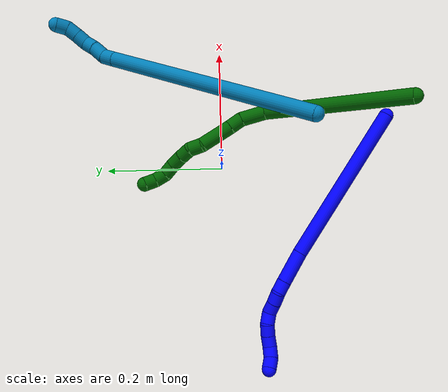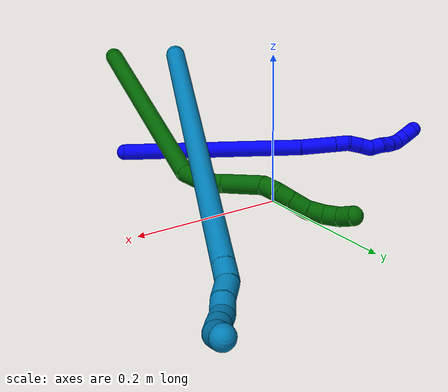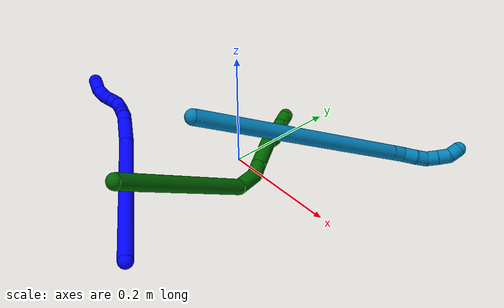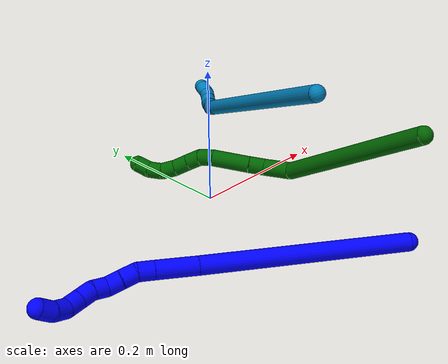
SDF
<sdf version="1.7">
 <world name="default">
  <model name="1">
   <static>0</static>
   <link name="1">
    <collision name="collision-cylinder-e_1_1_4">
     <pose>-0.119583 0.041073 -0.062704 -2.56169 -1.01088 2.15264</pose>
     <geometry><cylinder><radius>0.0125</radius><length>0.28227</length></cylinder></geometry>
     <surface>
      <friction><ode><mu>1.16</mu><mu2>1.16</mu2><slip1>0</slip1><slip2>0</slip2></ode></friction>
      <contact><ode><kp>1e+06</kp><kd>1</kd><max_vel>0</max_vel><min_depth>0.001</min_depth></ode></contact>
     </surface>
    </collision>
    <visual name="visual-cylinder-e_1_1_4">
     <pose>-0.119583 0.041073 -0.062704 -2.56169 -1.01088 2.15264</pose>
     <geometry><cylinder><radius>0.0125</radius><length>0.28227</length></cylinder></geometry>
     <material><ambient>0 0 1 1</ambient></material>
    </visual>
    <collision name="collision-cylinder-e_2_4_5">
     <pose>-0.262487 0.089173 -0.139473 -2.67827 -0.977617 2.30667</pose>
     <geometry><cylinder><radius>0.0125</radius><length>0.05625</length></cylinder></geometry>
     <surface>
      <friction><ode><mu>1.16</mu><mu2>1.16</mu2><slip1>0</slip1><slip2>0</slip2></ode></friction>
      <contact><ode><kp>1e+06</kp><kd>1</kd><max_vel>0</max_vel><min_depth>0.001</min_depth></ode></contact>
     </surface>
    </collision>
    <visual name="visual-cylinder-e_2_4_5">
     <pose>-0.262487 0.089173 -0.139473 -2.67827 -0.977617 2.30667</pose>
     <geometry><cylinder><radius>0.0125</radius><length>0.05625</length></cylinder></geometry>
     <material><ambient>0 0 1 1</ambient></material>
    </visual>
    <collision name="collision-cylinder-e_3_5_6">
     <pose>-0.294598 0.098908 -0.159022 -2.68291 -0.962858 2.30113</pose>
     <geometry><cylinder><radius>0.0125</radius><length>0.021419</length></cylinder></geometry>
     <surface>
      <friction><ode><mu>1.16</mu><mu2>1.16</mu2><slip1>0</slip1><slip2>0</slip2></ode></friction>
      <contact><ode><kp>1e+06</kp><kd>1</kd><max_vel>0</max_vel><min_depth>0.001</min_depth></ode></contact>
     </surface>
    </collision>
    <visual name="visual-cylinder-e_3_5_6">
     <pose>-0.294598 0.098908 -0.159022 -2.68291 -0.962858 2.30113</pose>
     <geometry><cylinder><radius>0.0125</radius><length>0.021419</length></cylinder></geometry>
     <material><ambient>0 0 1 1</ambient></material>
    </visual>
    <collision name="collision-cylinder-e_4_6_7">
     <pose>-0.309818 0.107254 -0.169708 -2.31594 -0.697576 1.38586</pose>
     <geometry><cylinder><radius>0.0125</radius><length>0.020015</length></cylinder></geometry>
     <surface>
      <friction><ode><mu>1.16</mu><mu2>1.16</mu2><slip1>0</slip1><slip2>0</slip2></ode></friction>
      <contact><ode><kp>1e+06</kp><kd>1</kd><max_vel>0</max_vel><min_depth>0.001</min_depth></ode></contact>
     </surface>
    </collision>
    <visual name="visual-cylinder-e_4_6_7">
     <pose>-0.309818 0.107254 -0.169708 -2.31594 -0.697576 1.38586</pose>
     <geometry><cylinder><radius>0.0125</radius><length>0.020015</length></cylinder></geometry>
     <material><ambient>0 0 1 1</ambient></material>
    </visual>
    <collision name="collision-cylinder-e_5_7_8">
     <pose>-0.322891 0.118803 -0.179507 -2.23183 -0.725667 1.32015</pose>
     <geometry><cylinder><radius>0.0125</radius><length>0.020025</length></cylinder></geometry>
     <surface>
      <friction><ode><mu>1.16</mu><mu2>1.16</mu2><slip1>0</slip1><slip2>0</slip2></ode></friction>
      <contact><ode><kp>1e+06</kp><kd>1</kd><max_vel>0</max_vel><min_depth>0.001</min_depth></ode></contact>
     </surface>
    </collision>
    <visual name="visual-cylinder-e_5_7_8">
     <pose>-0.322891 0.118803 -0.179507 -2.23183 -0.725667 1.32015</pose>
     <geometry><cylinder><radius>0.0125</radius><length>0.020025</length></cylinder></geometry>
     <material><ambient>0 0 1 1</ambient></material>
    </visual>
    <collision name="collision-cylinder-e_6_8_9">
     <pose>-0.335783 0.126687 -0.191661 -2.88643 -0.674794 2.44048</pose>
     <geometry><cylinder><radius>0.0125</radius><length>0.020002</length></cylinder></geometry>
     <surface>
      <friction><ode><mu>1.16</mu><mu2>1.16</mu2><slip1>0</slip1><slip2>0</slip2></ode></friction>
      <contact><ode><kp>1e+06</kp><kd>1</kd><max_vel>0</max_vel><min_depth>0.001</min_depth></ode></contact>
     </surface>
    </collision>
    <visual name="visual-cylinder-e_6_8_9">
     <pose>-0.335783 0.126687 -0.191661 -2.88643 -0.674794 2.44048</pose>
     <geometry><cylinder><radius>0.0125</radius><length>0.020002</length></cylinder></geometry>
     <material><ambient>0 0 1 1</ambient></material>
    </visual>
    <collision name="collision-cylinder-e_7_9_10">
     <pose>-0.345761 0.132951 -0.207443 -2.66054 -0.382238 1.33579</pose>
     <geometry><cylinder><radius>0.0125</radius><length>0.020001</length></cylinder></geometry>
     <surface>
      <friction><ode><mu>1.16</mu><mu2>1.16</mu2><slip1>0</slip1><slip2>0</slip2></ode></friction>
      <contact><ode><kp>1e+06</kp><kd>1</kd><max_vel>0</max_vel><min_depth>0.001</min_depth></ode></contact>
     </surface>
    </collision>
    <visual name="visual-cylinder-e_7_9_10">
     <pose>-0.345761 0.132951 -0.207443 -2.66054 -0.382238 1.33579</pose>
     <geometry><cylinder><radius>0.0125</radius><length>0.020001</length></cylinder></geometry>
     <material><ambient>0 0 1 1</ambient></material>
    </visual>
    <collision name="collision-cylinder-e_8_10_11">
     <pose>-0.352532 0.140555 -0.224608 -2.78687 -0.308786 1.43</pose>
     <geometry><cylinder><radius>0.0125</radius><length>0.020012</length></cylinder></geometry>
     <surface>
      <friction><ode><mu>1.16</mu><mu2>1.16</mu2><slip1>0</slip1><slip2>0</slip2></ode></friction>
      <contact><ode><kp>1e+06</kp><kd>1</kd><max_vel>0</max_vel><min_depth>0.001</min_depth></ode></contact>
     </surface>
    </collision>
    <visual name="visual-cylinder-e_8_10_11">
     <pose>-0.352532 0.140555 -0.224608 -2.78687 -0.308786 1.43</pose>
     <geometry><cylinder><radius>0.0125</radius><length>0.020012</length></cylinder></geometry>
     <material><ambient>0 0 1 1</ambient></material>
    </visual>
    <collision name="collision-cylinder-e_9_11_12">
     <pose>-0.359744 0.143836 -0.242639 3.13826 -0.430109 -3.12631</pose>
     <geometry><cylinder><radius>0.0125</radius><length>0.020006</length></cylinder></geometry>
     <surface>
      <friction><ode><mu>1.16</mu><mu2>1.16</mu2><slip1>0</slip1><slip2>0</slip2></ode></friction>
      <contact><ode><kp>1e+06</kp><kd>1</kd><max_vel>0</max_vel><min_depth>0.001</min_depth></ode></contact>
     </surface>
    </collision>
    <visual name="visual-cylinder-e_9_11_12">
     <pose>-0.359744 0.143836 -0.242639 3.13826 -0.430109 -3.12631</pose>
     <geometry><cylinder><radius>0.0125</radius><length>0.020006</length></cylinder></geometry>
     <material><ambient>0 0 1 1</ambient></material>
    </visual>
    <collision name="collision-cylinder-e_10_12_2">
     <pose>-0.370534 0.14138 -0.258823 2.81203 -0.723348 -2.31334</pose>
     <geometry><cylinder><radius>0.0125</radius><length>0.020001</length></cylinder></geometry>
     <surface>
      <friction><ode><mu>1.16</mu><mu2>1.16</mu2><slip1>0</slip1><slip2>0</slip2></ode></friction>
      <contact><ode><kp>1e+06</kp><kd>1</kd><max_vel>0</max_vel><min_depth>0.001</min_depth></ode></contact>
     </surface>
    </collision>
    <visual name="visual-cylinder-e_10_12_2">
     <pose>-0.370534 0.14138 -0.258823 2.81203 -0.723348 -2.31334</pose>
     <geometry><cylinder><radius>0.0125</radius><length>0.020001</length></cylinder></geometry>
     <material><ambient>0 0 1 1</ambient></material>
    </visual>
    <collision name="collision-sphere-2">
     <pose>-0.377153 0.138954 -0.265916 0 -0 0</pose>
     <geometry><sphere><radius>0.0125</radius></sphere></geometry>
     <surface>
      <friction><ode><mu>1.16</mu><mu2>1.16</mu2><slip1>0</slip1><slip2>0</slip2></ode></friction>
      <contact><ode><kp>1e+06</kp><kd>1</kd><max_vel>0</max_vel><min_depth>0.001</min_depth></ode></contact>
     </surface>
    </collision>
    <visual name="visual-sphere-2">
     <pose>-0.377153 0.138954 -0.265916 0 -0 0</pose>
     <geometry><sphere><radius>0.0125</radius></sphere></geometry>
     <material><ambient>0 0 1 1</ambient></material>
    </visual>
    <collision name="collision-sphere-12">
     <pose>-0.363915 0.143806 -0.251731 0 -0 0</pose>
     <geometry><sphere><radius>0.0125</radius></sphere></geometry>
     <surface>
      <friction><ode><mu>1.16</mu><mu2>1.16</mu2><slip1>0</slip1><slip2>0</slip2></ode></friction>
      <contact><ode><kp>1e+06</kp><kd>1</kd><max_vel>0</max_vel><min_depth>0.001</min_depth></ode></contact>
     </surface>
    </collision>
    <visual name="visual-sphere-12">
     <pose>-0.363915 0.143806 -0.251731 0 -0 0</pose>
     <geometry><sphere><radius>0.0125</radius></sphere></geometry>
     <material><ambient>0 0 1 1</ambient></material>
    </visual>
    <collision name="collision-sphere-11">
     <pose>-0.355573 0.143866 -0.233547 0 -0 0</pose>
     <geometry><sphere><radius>0.0125</radius></sphere></geometry>
     <surface>
      <friction><ode><mu>1.16</mu><mu2>1.16</mu2><slip1>0</slip1><slip2>0</slip2></ode></friction>
      <contact><ode><kp>1e+06</kp><kd>1</kd><max_vel>0</max_vel><min_depth>0.001</min_depth></ode></contact>
     </surface>
    </collision>
    <visual name="visual-sphere-11">
     <pose>-0.355573 0.143866 -0.233547 0 -0 0</pose>
     <geometry><sphere><radius>0.0125</radius></sphere></geometry>
     <material><ambient>0 0 1 1</ambient></material>
    </visual>
    <collision name="collision-sphere-10">
     <pose>-0.349492 0.137244 -0.215669 0 -0 0</pose>
     <geometry><sphere><radius>0.0125</radius></sphere></geometry>
     <surface>
      <friction><ode><mu>1.16</mu><mu2>1.16</mu2><slip1>0</slip1><slip2>0</slip2></ode></friction>
      <contact><ode><kp>1e+06</kp><kd>1</kd><max_vel>0</max_vel><min_depth>0.001</min_depth></ode></contact>
     </surface>
    </collision>
    <visual name="visual-sphere-10">
     <pose>-0.349492 0.137244 -0.215669 0 -0 0</pose>
     <geometry><sphere><radius>0.0125</radius></sphere></geometry>
     <material><ambient>0 0 1 1</ambient></material>
    </visual>
    <collision name="collision-sphere-9">
     <pose>-0.342031 0.128658 -0.199217 0 -0 0</pose>
     <geometry><sphere><radius>0.0125</radius></sphere></geometry>
     <surface>
      <friction><ode><mu>1.16</mu><mu2>1.16</mu2><slip1>0</slip1><slip2>0</slip2></ode></friction>
      <contact><ode><kp>1e+06</kp><kd>1</kd><max_vel>0</max_vel><min_depth>0.001</min_depth></ode></contact>
     </surface>
    </collision>
    <visual name="visual-sphere-9">
     <pose>-0.342031 0.128658 -0.199217 0 -0 0</pose>
     <geometry><sphere><radius>0.0125</radius></sphere></geometry>
     <material><ambient>0 0 1 1</ambient></material>
    </visual>
    <collision name="collision-sphere-4">
     <pose>-0.239167 0.082147 -0.125409 0 -0 0</pose>
     <geometry><sphere><radius>0.0125</radius></sphere></geometry>
     <surface>
      <friction><ode><mu>1.16</mu><mu2>1.16</mu2><slip1>0</slip1><slip2>0</slip2></ode></friction>
      <contact><ode><kp>1e+06</kp><kd>1</kd><max_vel>0</max_vel><min_depth>0.001</min_depth></ode></contact>
     </surface>
    </collision>
    <visual name="visual-sphere-4">
     <pose>-0.239167 0.082147 -0.125409 0 -0 0</pose>
     <geometry><sphere><radius>0.0125</radius></sphere></geometry>
     <material><ambient>0 0 1 1</ambient></material>
    </visual>
    <collision name="collision-sphere-1">
     <geometry><sphere><radius>0.0125</radius></sphere></geometry>
     <surface>
      <friction><ode><mu>1.16</mu><mu2>1.16</mu2><slip1>0</slip1><slip2>0</slip2></ode></friction>
      <contact><ode><kp>1e+06</kp><kd>1</kd><max_vel>0</max_vel><min_depth>0.001</min_depth></ode></contact>
     </surface>
    </collision>
    <visual name="visual-sphere-1">
     <geometry><sphere><radius>0.0125</radius></sphere></geometry>
     <material><ambient>0 0 1 1</ambient></material>
    </visual>
    <collision name="collision-sphere-8">
     <pose>-0.329536 0.124716 -0.184105 0 -0 0</pose>
     <geometry><sphere><radius>0.0125</radius></sphere></geometry>
     <surface>
      <friction><ode><mu>1.16</mu><mu2>1.16</mu2><slip1>0</slip1><slip2>0</slip2></ode></friction>
      <contact><ode><kp>1e+06</kp><kd>1</kd><max_vel>0</max_vel><min_depth>0.001</min_depth></ode></contact>
     </surface>
    </collision>
    <visual name="visual-sphere-8">
     <pose>-0.329536 0.124716 -0.184105 0 -0 0</pose>
     <geometry><sphere><radius>0.0125</radius></sphere></geometry>
     <material><ambient>0 0 1 1</ambient></material>
    </visual>
    <collision name="collision-sphere-5">
     <pose>-0.285807 0.0962 -0.153537 0 -0 0</pose>
     <geometry><sphere><radius>0.0125</radius></sphere></geometry>
     <surface>
      <friction><ode><mu>1.16</mu><mu2>1.16</mu2><slip1>0</slip1><slip2>0</slip2></ode></friction>
      <contact><ode><kp>1e+06</kp><kd>1</kd><max_vel>0</max_vel><min_depth>0.001</min_depth></ode></contact>
     </surface>
    </collision>
    <visual name="visual-sphere-5">
     <pose>-0.285807 0.0962 -0.153537 0 -0 0</pose>
     <geometry><sphere><radius>0.0125</radius></sphere></geometry>
     <material><ambient>0 0 1 1</ambient></material>
    </visual>
    <collision name="collision-sphere-6">
     <pose>-0.303389 0.101617 -0.164507 0 -0 0</pose>
     <geometry><sphere><radius>0.0125</radius></sphere></geometry>
     <surface>
      <friction><ode><mu>1.16</mu><mu2>1.16</mu2><slip1>0</slip1><slip2>0</slip2></ode></friction>
      <contact><ode><kp>1e+06</kp><kd>1</kd><max_vel>0</max_vel><min_depth>0.001</min_depth></ode></contact>
     </surface>
    </collision>
    <visual name="visual-sphere-6">
     <pose>-0.303389 0.101617 -0.164507 0 -0 0</pose>
     <geometry><sphere><radius>0.0125</radius></sphere></geometry>
     <material><ambient>0 0 1 1</ambient></material>
    </visual>
    <collision name="collision-sphere-7">
     <pose>-0.316246 0.112891 -0.174908 0 -0 0</pose>
     <geometry><sphere><radius>0.0125</radius></sphere></geometry>
     <surface>
      <friction><ode><mu>1.16</mu><mu2>1.16</mu2><slip1>0</slip1><slip2>0</slip2></ode></friction>
      <contact><ode><kp>1e+06</kp><kd>1</kd><max_vel>0</max_vel><min_depth>0.001</min_depth></ode></contact>
     </surface>
    </collision>
    <visual name="visual-sphere-7">
     <pose>-0.316246 0.112891 -0.174908 0 -0 0</pose>
     <geometry><sphere><radius>0.0125</radius></sphere></geometry>
     <material><ambient>0 0 1 1</ambient></material>
    </visual>
    <inertial>
     <pose>-0.205582 0.07393 -0.116901 0 -0 0</pose>
     <mass>0.5</mass>
     <inertia>
      <ixx>0.00026</ixx>
      <ixy>0</ixy>
      <ixz>0</ixz>
      <iyy>0.002479</iyy>
      <iyz>0</iyz>
      <izz>0.001041</izz>
     </inertia>
    </inertial>
   </link>
   <pose>0.08577 -0.287506 0.012483 -1.83441 0.213292 -1.11608</pose>
  </model>
  <model name="6">
   <static>0</static>
   <link name="6">
    <collision name="collision-cylinder-e_1_1_4">
     <pose>-0.028312 -0.008998 -0.120222 3.06688 -0.230661 -2.51747</pose>
     <geometry><cylinder><radius>0.0125</radius><length>0.247676</length></cylinder></geometry>
     <surface>
      <friction><ode><mu>1.16</mu><mu2>1.16</mu2><slip1>0</slip1><slip2>0</slip2></ode></friction>
      <contact><ode><kp>1e+06</kp><kd>1</kd><max_vel>0</max_vel><min_depth>0.001</min_depth></ode></contact>
     </surface>
    </collision>
    <visual name="visual-cylinder-e_1_1_4">
     <pose>-0.028312 -0.008998 -0.120222 3.06688 -0.230661 -2.51747</pose>
     <geometry><cylinder><radius>0.0125</radius><length>0.247676</length></cylinder></geometry>
     <material><ambient>0 0.392157 0.003922 1</ambient></material>
    </visual>
    <collision name="collision-cylinder-e_2_4_5">
     <pose>-0.06249 -0.009435 -0.259329 -2.71595 -0.275693 1.14143</pose>
     <geometry><cylinder><radius>0.0125</radius><length>0.043098</length></cylinder></geometry>
     <surface>
      <friction><ode><mu>1.16</mu><mu2>1.16</mu2><slip1>0</slip1><slip2>0</slip2></ode></friction>
      <contact><ode><kp>1e+06</kp><kd>1</kd><max_vel>0</max_vel><min_depth>0.001</min_depth></ode></contact>
     </surface>
    </collision>
    <visual name="visual-cylinder-e_2_4_5">
     <pose>-0.06249 -0.009435 -0.259329 -2.71595 -0.275693 1.14143</pose>
     <geometry><cylinder><radius>0.0125</radius><length>0.043098</length></cylinder></geometry>
     <material><ambient>0 0.392157 0.003922 1</ambient></material>
    </visual>
    <collision name="collision-cylinder-e_3_5_6">
     <pose>-0.073965 0.007013 -0.285647 -2.32654 -0.477595 1.02694</pose>
     <geometry><cylinder><radius>0.0125</radius><length>0.024406</length></cylinder></geometry>
     <surface>
      <friction><ode><mu>1.16</mu><mu2>1.16</mu2><slip1>0</slip1><slip2>0</slip2></ode></friction>
      <contact><ode><kp>1e+06</kp><kd>1</kd><max_vel>0</max_vel><min_depth>0.001</min_depth></ode></contact>
     </surface>
    </collision>
    <visual name="visual-cylinder-e_3_5_6">
     <pose>-0.073965 0.007013 -0.285647 -2.32654 -0.477595 1.02694</pose>
     <geometry><cylinder><radius>0.0125</radius><length>0.024406</length></cylinder></geometry>
     <material><ambient>0 0.392157 0.003922 1</ambient></material>
    </visual>
    <collision name="collision-cylinder-e_4_6_7">
     <pose>-0.091571 0.032796 -0.311034 -2.35783 -0.442027 0.995972</pose>
     <geometry><cylinder><radius>0.0125</radius><length>0.056091</length></cylinder></geometry>
     <surface>
      <friction><ode><mu>1.16</mu><mu2>1.16</mu2><slip1>0</slip1><slip2>0</slip2></ode></friction>
      <contact><ode><kp>1e+06</kp><kd>1</kd><max_vel>0</max_vel><min_depth>0.001</min_depth></ode></contact>
     </surface>
    </collision>
    <visual name="visual-cylinder-e_4_6_7">
     <pose>-0.091571 0.032796 -0.311034 -2.35783 -0.442027 0.995972</pose>
     <geometry><cylinder><radius>0.0125</radius><length>0.056091</length></cylinder></geometry>
     <material><ambient>0 0.392157 0.003922 1</ambient></material>
    </visual>
    <collision name="collision-cylinder-e_5_7_8">
     <pose>-0.107335 0.054575 -0.338636 -2.75902 -0.347546 1.47275</pose>
     <geometry><cylinder><radius>0.0125</radius><length>0.022122</length></cylinder></geometry>
     <surface>
      <friction><ode><mu>1.16</mu><mu2>1.16</mu2><slip1>0</slip1><slip2>0</slip2></ode></friction>
      <contact><ode><kp>1e+06</kp><kd>1</kd><max_vel>0</max_vel><min_depth>0.001</min_depth></ode></contact>
     </surface>
    </collision>
    <visual name="visual-cylinder-e_5_7_8">
     <pose>-0.107335 0.054575 -0.338636 -2.75902 -0.347546 1.47275</pose>
     <geometry><cylinder><radius>0.0125</radius><length>0.022122</length></cylinder></geometry>
     <material><ambient>0 0.392157 0.003922 1</ambient></material>
    </visual>
    <collision name="collision-cylinder-e_6_8_9">
     <pose>-0.118225 0.059878 -0.355666 -2.95139 -0.758354 2.67164</pose>
     <geometry><cylinder><radius>0.0125</radius><length>0.020712</length></cylinder></geometry>
     <surface>
      <friction><ode><mu>1.16</mu><mu2>1.16</mu2><slip1>0</slip1><slip2>0</slip2></ode></friction>
      <contact><ode><kp>1e+06</kp><kd>1</kd><max_vel>0</max_vel><min_depth>0.001</min_depth></ode></contact>
     </surface>
    </collision>
    <visual name="visual-cylinder-e_6_8_9">
     <pose>-0.118225 0.059878 -0.355666 -2.95139 -0.758354 2.67164</pose>
     <geometry><cylinder><radius>0.0125</radius><length>0.020712</length></cylinder></geometry>
     <material><ambient>0 0.392157 0.003922 1</ambient></material>
    </visual>
    <collision name="collision-cylinder-e_7_9_10">
     <pose>-0.133693 0.062857 -0.37107 -2.94976 -0.796005 2.69168</pose>
     <geometry><cylinder><radius>0.0125</radius><length>0.023359</length></cylinder></geometry>
     <surface>
      <friction><ode><mu>1.16</mu><mu2>1.16</mu2><slip1>0</slip1><slip2>0</slip2></ode></friction>
      <contact><ode><kp>1e+06</kp><kd>1</kd><max_vel>0</max_vel><min_depth>0.001</min_depth></ode></contact>
     </surface>
    </collision>
    <visual name="visual-cylinder-e_7_9_10">
     <pose>-0.133693 0.062857 -0.37107 -2.94976 -0.796005 2.69168</pose>
     <geometry><cylinder><radius>0.0125</radius><length>0.023359</length></cylinder></geometry>
     <material><ambient>0 0.392157 0.003922 1</ambient></material>
    </visual>
    <collision name="collision-cylinder-e_8_10_11">
     <pose>-0.150085 0.068246 -0.384957 -2.56316 -0.854403 1.98374</pose>
     <geometry><cylinder><radius>0.0125</radius><length>0.021338</length></cylinder></geometry>
     <surface>
      <friction><ode><mu>1.16</mu><mu2>1.16</mu2><slip1>0</slip1><slip2>0</slip2></ode></friction>
      <contact><ode><kp>1e+06</kp><kd>1</kd><max_vel>0</max_vel><min_depth>0.001</min_depth></ode></contact>
     </surface>
    </collision>
    <visual name="visual-cylinder-e_8_10_11">
     <pose>-0.150085 0.068246 -0.384957 -2.56316 -0.854403 1.98374</pose>
     <geometry><cylinder><radius>0.0125</radius><length>0.021338</length></cylinder></geometry>
     <material><ambient>0 0.392157 0.003922 1</ambient></material>
    </visual>
    <collision name="collision-cylinder-e_9_11_12">
     <pose>-0.162676 0.077988 -0.398004 -2.45278 -0.454479 1.1452</pose>
     <geometry><cylinder><radius>0.0125</radius><length>0.020705</length></cylinder></geometry>
     <surface>
      <friction><ode><mu>1.16</mu><mu2>1.16</mu2><slip1>0</slip1><slip2>0</slip2></ode></friction>
      <contact><ode><kp>1e+06</kp><kd>1</kd><max_vel>0</max_vel><min_depth>0.001</min_depth></ode></contact>
     </surface>
    </collision>
    <visual name="visual-cylinder-e_9_11_12">
     <pose>-0.162676 0.077988 -0.398004 -2.45278 -0.454479 1.1452</pose>
     <geometry><cylinder><radius>0.0125</radius><length>0.020705</length></cylinder></geometry>
     <material><ambient>0 0.392157 0.003922 1</ambient></material>
    </visual>
    <collision name="collision-cylinder-e_10_12_2">
     <pose>-0.168892 0.091437 -0.411922 -2.30025 -0.163892 0.363119</pose>
     <geometry><cylinder><radius>0.0125</radius><length>0.020493</length></cylinder></geometry>
     <surface>
      <friction><ode><mu>1.16</mu><mu2>1.16</mu2><slip1>0</slip1><slip2>0</slip2></ode></friction>
      <contact><ode><kp>1e+06</kp><kd>1</kd><max_vel>0</max_vel><min_depth>0.001</min_depth></ode></contact>
     </surface>
    </collision>
    <visual name="visual-cylinder-e_10_12_2">
     <pose>-0.168892 0.091437 -0.411922 -2.30025 -0.163892 0.363119</pose>
     <geometry><cylinder><radius>0.0125</radius><length>0.020493</length></cylinder></geometry>
     <material><ambient>0 0.392157 0.003922 1</ambient></material>
    </visual>
    <collision name="collision-sphere-2">
     <pose>-0.170564 0.098974 -0.41866 0 -0 0</pose>
     <geometry><sphere><radius>0.0125</radius></sphere></geometry>
     <surface>
      <friction><ode><mu>1.16</mu><mu2>1.16</mu2><slip1>0</slip1><slip2>0</slip2></ode></friction>
      <contact><ode><kp>1e+06</kp><kd>1</kd><max_vel>0</max_vel><min_depth>0.001</min_depth></ode></contact>
     </surface>
    </collision>
    <visual name="visual-sphere-2">
     <pose>-0.170564 0.098974 -0.41866 0 -0 0</pose>
     <geometry><sphere><radius>0.0125</radius></sphere></geometry>
     <material><ambient>0 0.392157 0.003922 1</ambient></material>
    </visual>
    <collision name="collision-sphere-12">
     <pose>-0.167221 0.0839 -0.405185 0 -0 0</pose>
     <geometry><sphere><radius>0.0125</radius></sphere></geometry>
     <surface>
      <friction><ode><mu>1.16</mu><mu2>1.16</mu2><slip1>0</slip1><slip2>0</slip2></ode></friction>
      <contact><ode><kp>1e+06</kp><kd>1</kd><max_vel>0</max_vel><min_depth>0.001</min_depth></ode></contact>
     </surface>
    </collision>
    <visual name="visual-sphere-12">
     <pose>-0.167221 0.0839 -0.405185 0 -0 0</pose>
     <geometry><sphere><radius>0.0125</radius></sphere></geometry>
     <material><ambient>0 0.392157 0.003922 1</ambient></material>
    </visual>
    <collision name="collision-sphere-11">
     <pose>-0.158131 0.072076 -0.390823 0 -0 0</pose>
     <geometry><sphere><radius>0.0125</radius></sphere></geometry>
     <surface>
      <friction><ode><mu>1.16</mu><mu2>1.16</mu2><slip1>0</slip1><slip2>0</slip2></ode></friction>
      <contact><ode><kp>1e+06</kp><kd>1</kd><max_vel>0</max_vel><min_depth>0.001</min_depth></ode></contact>
     </surface>
    </collision>
    <visual name="visual-sphere-11">
     <pose>-0.158131 0.072076 -0.390823 0 -0 0</pose>
     <geometry><sphere><radius>0.0125</radius></sphere></geometry>
     <material><ambient>0 0.392157 0.003922 1</ambient></material>
    </visual>
    <collision name="collision-sphere-10">
     <pose>-0.142039 0.064415 -0.379091 0 -0 0</pose>
     <geometry><sphere><radius>0.0125</radius></sphere></geometry>
     <surface>
      <friction><ode><mu>1.16</mu><mu2>1.16</mu2><slip1>0</slip1><slip2>0</slip2></ode></friction>
      <contact><ode><kp>1e+06</kp><kd>1</kd><max_vel>0</max_vel><min_depth>0.001</min_depth></ode></contact>
     </surface>
    </collision>
    <visual name="visual-sphere-10">
     <pose>-0.142039 0.064415 -0.379091 0 -0 0</pose>
     <geometry><sphere><radius>0.0125</radius></sphere></geometry>
     <material><ambient>0 0.392157 0.003922 1</ambient></material>
    </visual>
    <collision name="collision-sphere-9">
     <pose>-0.125347 0.0613 -0.363049 0 -0 0</pose>
     <geometry><sphere><radius>0.0125</radius></sphere></geometry>
     <surface>
      <friction><ode><mu>1.16</mu><mu2>1.16</mu2><slip1>0</slip1><slip2>0</slip2></ode></friction>
      <contact><ode><kp>1e+06</kp><kd>1</kd><max_vel>0</max_vel><min_depth>0.001</min_depth></ode></contact>
     </surface>
    </collision>
    <visual name="visual-sphere-9">
     <pose>-0.125347 0.0613 -0.363049 0 -0 0</pose>
     <geometry><sphere><radius>0.0125</radius></sphere></geometry>
     <material><ambient>0 0.392157 0.003922 1</ambient></material>
    </visual>
    <collision name="collision-sphere-4">
     <pose>-0.056624 -0.017997 -0.240444 0 -0 0</pose>
     <geometry><sphere><radius>0.0125</radius></sphere></geometry>
     <surface>
      <friction><ode><mu>1.16</mu><mu2>1.16</mu2><slip1>0</slip1><slip2>0</slip2></ode></friction>
      <contact><ode><kp>1e+06</kp><kd>1</kd><max_vel>0</max_vel><min_depth>0.001</min_depth></ode></contact>
     </surface>
    </collision>
    <visual name="visual-sphere-4">
     <pose>-0.056624 -0.017997 -0.240444 0 -0 0</pose>
     <geometry><sphere><radius>0.0125</radius></sphere></geometry>
     <material><ambient>0 0.392157 0.003922 1</ambient></material>
    </visual>
    <collision name="collision-sphere-1">
     <geometry><sphere><radius>0.0125</radius></sphere></geometry>
     <surface>
      <friction><ode><mu>1.16</mu><mu2>1.16</mu2><slip1>0</slip1><slip2>0</slip2></ode></friction>
      <contact><ode><kp>1e+06</kp><kd>1</kd><max_vel>0</max_vel><min_depth>0.001</min_depth></ode></contact>
     </surface>
    </collision>
    <visual name="visual-sphere-1">
     <geometry><sphere><radius>0.0125</radius></sphere></geometry>
     <material><ambient>0 0.392157 0.003922 1</ambient></material>
    </visual>
    <collision name="collision-sphere-8">
     <pose>-0.111103 0.058457 -0.348284 0 -0 0</pose>
     <geometry><sphere><radius>0.0125</radius></sphere></geometry>
     <surface>
      <friction><ode><mu>1.16</mu><mu2>1.16</mu2><slip1>0</slip1><slip2>0</slip2></ode></friction>
      <contact><ode><kp>1e+06</kp><kd>1</kd><max_vel>0</max_vel><min_depth>0.001</min_depth></ode></contact>
     </surface>
    </collision>
    <visual name="visual-sphere-8">
     <pose>-0.111103 0.058457 -0.348284 0 -0 0</pose>
     <geometry><sphere><radius>0.0125</radius></sphere></geometry>
     <material><ambient>0 0.392157 0.003922 1</ambient></material>
    </visual>
    <collision name="collision-sphere-5">
     <pose>-0.068356 -0.000874 -0.278214 0 -0 0</pose>
     <geometry><sphere><radius>0.0125</radius></sphere></geometry>
     <surface>
      <friction><ode><mu>1.16</mu><mu2>1.16</mu2><slip1>0</slip1><slip2>0</slip2></ode></friction>
      <contact><ode><kp>1e+06</kp><kd>1</kd><max_vel>0</max_vel><min_depth>0.001</min_depth></ode></contact>
     </surface>
    </collision>
    <visual name="visual-sphere-5">
     <pose>-0.068356 -0.000874 -0.278214 0 -0 0</pose>
     <geometry><sphere><radius>0.0125</radius></sphere></geometry>
     <material><ambient>0 0.392157 0.003922 1</ambient></material>
    </visual>
    <collision name="collision-sphere-6">
     <pose>-0.079574 0.014901 -0.293079 0 -0 0</pose>
     <geometry><sphere><radius>0.0125</radius></sphere></geometry>
     <surface>
      <friction><ode><mu>1.16</mu><mu2>1.16</mu2><slip1>0</slip1><slip2>0</slip2></ode></friction>
      <contact><ode><kp>1e+06</kp><kd>1</kd><max_vel>0</max_vel><min_depth>0.001</min_depth></ode></contact>
     </surface>
    </collision>
    <visual name="visual-sphere-6">
     <pose>-0.079574 0.014901 -0.293079 0 -0 0</pose>
     <geometry><sphere><radius>0.0125</radius></sphere></geometry>
     <material><ambient>0 0.392157 0.003922 1</ambient></material>
    </visual>
    <collision name="collision-sphere-7">
     <pose>-0.103568 0.050692 -0.328988 0 -0 0</pose>
     <geometry><sphere><radius>0.0125</radius></sphere></geometry>
     <surface>
      <friction><ode><mu>1.16</mu><mu2>1.16</mu2><slip1>0</slip1><slip2>0</slip2></ode></friction>
      <contact><ode><kp>1e+06</kp><kd>1</kd><max_vel>0</max_vel><min_depth>0.001</min_depth></ode></contact>
     </surface>
    </collision>
    <visual name="visual-sphere-7">
     <pose>-0.103568 0.050692 -0.328988 0 -0 0</pose>
     <geometry><sphere><radius>0.0125</radius></sphere></geometry>
     <material><ambient>0 0.392157 0.003922 1</ambient></material>
    </visual>
    <inertial>
     <pose>-0.06925 0.016472 -0.227585 0 -0 0</pose>
     <mass>0.5</mass>
     <inertia>
      <ixx>-0.001708</ixx>
      <ixy>0</ixy>
      <ixz>0</ixz>
      <iyy>0.000353</iyy>
      <iyz>0</iyz>
      <izz>0.000348</izz>
     </inertia>
    </inertial>
   </link>
   <pose>0.092395 -0.288262 0.166585 1.14884 -0.456214 -0.001176</pose>
  </model>
  <model name="9">
   <static>0</static>
   <link name="9">
    <collision name="collision-cylinder-e_1_1_4">
     <pose>0.028538 0.181855 -0.029294 -1.73051 0.153708 -0.180315</pose>
     <geometry><cylinder><radius>0.0125</radius><length>0.372793</length></cylinder></geometry>
     <surface>
      <friction><ode><mu>1.16</mu><mu2>1.16</mu2><slip1>0</slip1><slip2>0</slip2></ode></friction>
      <contact><ode><kp>1e+06</kp><kd>1</kd><max_vel>0</max_vel><min_depth>0.001</min_depth></ode></contact>
     </surface>
    </collision>
    <visual name="visual-cylinder-e_1_1_4">
     <pose>0.028538 0.181855 -0.029294 -1.73051 0.153708 -0.180315</pose>
     <geometry><cylinder><radius>0.0125</radius><length>0.372793</length></cylinder></geometry>
     <material><ambient>0 0.490196 0.709804 1</ambient></material>
    </visual>
    <collision name="collision-cylinder-e_2_4_5">
     <pose>0.058784 0.374791 -0.060377 -1.7309 0.15097 -0.177177</pose>
     <geometry><cylinder><radius>0.0125</radius><length>0.022709</length></cylinder></geometry>
     <surface>
      <friction><ode><mu>1.16</mu><mu2>1.16</mu2><slip1>0</slip1><slip2>0</slip2></ode></friction>
      <contact><ode><kp>1e+06</kp><kd>1</kd><max_vel>0</max_vel><min_depth>0.001</min_depth></ode></contact>
     </surface>
    </collision>
    <visual name="visual-cylinder-e_2_4_5">
     <pose>0.058784 0.374791 -0.060377 -1.7309 0.15097 -0.177177</pose>
     <geometry><cylinder><radius>0.0125</radius><length>0.022709</length></cylinder></geometry>
     <material><ambient>0 0.490196 0.709804 1</ambient></material>
    </visual>
    <collision name="collision-cylinder-e_3_5_6">
     <pose>0.057582 0.397357 -0.0651 -1.82091 -0.24071 0.308956</pose>
     <geometry><cylinder><radius>0.0125</radius><length>0.02441</length></cylinder></geometry>
     <surface>
      <friction><ode><mu>1.16</mu><mu2>1.16</mu2><slip1>0</slip1><slip2>0</slip2></ode></friction>
      <contact><ode><kp>1e+06</kp><kd>1</kd><max_vel>0</max_vel><min_depth>0.001</min_depth></ode></contact>
     </surface>
    </collision>
    <visual name="visual-cylinder-e_3_5_6">
     <pose>0.057582 0.397357 -0.0651 -1.82091 -0.24071 0.308956</pose>
     <geometry><cylinder><radius>0.0125</radius><length>0.02441</length></cylinder></geometry>
     <material><ambient>0 0.490196 0.709804 1</ambient></material>
    </visual>
    <collision name="collision-cylinder-e_4_6_7">
     <pose>0.053907 0.418567 -0.070396 -1.80907 -0.076332 0.097062</pose>
     <geometry><cylinder><radius>0.0125</radius><length>0.020077</length></cylinder></geometry>
     <surface>
      <friction><ode><mu>1.16</mu><mu2>1.16</mu2><slip1>0</slip1><slip2>0</slip2></ode></friction>
      <contact><ode><kp>1e+06</kp><kd>1</kd><max_vel>0</max_vel><min_depth>0.001</min_depth></ode></contact>
     </surface>
    </collision>
    <visual name="visual-cylinder-e_4_6_7">
     <pose>0.053907 0.418567 -0.070396 -1.80907 -0.076332 0.097062</pose>
     <geometry><cylinder><radius>0.0125</radius><length>0.020077</length></cylinder></geometry>
     <material><ambient>0 0.490196 0.709804 1</ambient></material>
    </visual>
    <collision name="collision-cylinder-e_5_7_8">
     <pose>0.050152 0.435922 -0.078493 -2.21539 -0.303499 0.594394</pose>
     <geometry><cylinder><radius>0.0125</radius><length>0.020001</length></cylinder></geometry>
     <surface>
      <friction><ode><mu>1.16</mu><mu2>1.16</mu2><slip1>0</slip1><slip2>0</slip2></ode></friction>
      <contact><ode><kp>1e+06</kp><kd>1</kd><max_vel>0</max_vel><min_depth>0.001</min_depth></ode></contact>
     </surface>
    </collision>
    <visual name="visual-cylinder-e_5_7_8">
     <pose>0.050152 0.435922 -0.078493 -2.21539 -0.303499 0.594394</pose>
     <geometry><cylinder><radius>0.0125</radius><length>0.020001</length></cylinder></geometry>
     <material><ambient>0 0.490196 0.709804 1</ambient></material>
    </visual>
    <collision name="collision-cylinder-e_6_8_9">
     <pose>0.044599 0.451159 -0.090189 -2.23544 -0.259366 0.523457</pose>
     <geometry><cylinder><radius>0.0125</radius><length>0.020002</length></cylinder></geometry>
     <surface>
      <friction><ode><mu>1.16</mu><mu2>1.16</mu2><slip1>0</slip1><slip2>0</slip2></ode></friction>
      <contact><ode><kp>1e+06</kp><kd>1</kd><max_vel>0</max_vel><min_depth>0.001</min_depth></ode></contact>
     </surface>
    </collision>
    <visual name="visual-cylinder-e_6_8_9">
     <pose>0.044599 0.451159 -0.090189 -2.23544 -0.259366 0.523457</pose>
     <geometry><cylinder><radius>0.0125</radius><length>0.020002</length></cylinder></geometry>
     <material><ambient>0 0.490196 0.709804 1</ambient></material>
    </visual>
    <collision name="collision-cylinder-e_7_9_2">
     <pose>0.043133 0.464396 -0.104349 -2.53996 0.110028 -0.351366</pose>
     <geometry><cylinder><radius>0.0125</radius><length>0.020009</length></cylinder></geometry>
     <surface>
      <friction><ode><mu>1.16</mu><mu2>1.16</mu2><slip1>0</slip1><slip2>0</slip2></ode></friction>
      <contact><ode><kp>1e+06</kp><kd>1</kd><max_vel>0</max_vel><min_depth>0.001</min_depth></ode></contact>
     </surface>
    </collision>
    <visual name="visual-cylinder-e_7_9_2">
     <pose>0.043133 0.464396 -0.104349 -2.53996 0.110028 -0.351366</pose>
     <geometry><cylinder><radius>0.0125</radius><length>0.020009</length></cylinder></geometry>
     <material><ambient>0 0.490196 0.709804 1</ambient></material>
    </visual>
    <collision name="collision-sphere-2">
     <pose>0.044231 0.470025 -0.112547 0 -0 0</pose>
     <geometry><sphere><radius>0.0125</radius></sphere></geometry>
     <surface>
      <friction><ode><mu>1.16</mu><mu2>1.16</mu2><slip1>0</slip1><slip2>0</slip2></ode></friction>
      <contact><ode><kp>1e+06</kp><kd>1</kd><max_vel>0</max_vel><min_depth>0.001</min_depth></ode></contact>
     </surface>
    </collision>
    <visual name="visual-sphere-2">
     <pose>0.044231 0.470025 -0.112547 0 -0 0</pose>
     <geometry><sphere><radius>0.0125</radius></sphere></geometry>
     <material><ambient>0 0.490196 0.709804 1</ambient></material>
    </visual>
    <collision name="collision-sphere-9">
     <pose>0.042034 0.458768 -0.096151 0 -0 0</pose>
     <geometry><sphere><radius>0.0125</radius></sphere></geometry>
     <surface>
      <friction><ode><mu>1.16</mu><mu2>1.16</mu2><slip1>0</slip1><slip2>0</slip2></ode></friction>
      <contact><ode><kp>1e+06</kp><kd>1</kd><max_vel>0</max_vel><min_depth>0.001</min_depth></ode></contact>
     </surface>
    </collision>
    <visual name="visual-sphere-9">
     <pose>0.042034 0.458768 -0.096151 0 -0 0</pose>
     <geometry><sphere><radius>0.0125</radius></sphere></geometry>
     <material><ambient>0 0.490196 0.709804 1</ambient></material>
    </visual>
    <collision name="collision-sphere-4">
     <pose>0.057076 0.363709 -0.058587 0 -0 0</pose>
     <geometry><sphere><radius>0.0125</radius></sphere></geometry>
     <surface>
      <friction><ode><mu>1.16</mu><mu2>1.16</mu2><slip1>0</slip1><slip2>0</slip2></ode></friction>
      <contact><ode><kp>1e+06</kp><kd>1</kd><max_vel>0</max_vel><min_depth>0.001</min_depth></ode></contact>
     </surface>
    </collision>
    <visual name="visual-sphere-4">
     <pose>0.057076 0.363709 -0.058587 0 -0 0</pose>
     <geometry><sphere><radius>0.0125</radius></sphere></geometry>
     <material><ambient>0 0.490196 0.709804 1</ambient></material>
    </visual>
    <collision name="collision-sphere-1">
     <geometry><sphere><radius>0.0125</radius></sphere></geometry>
     <surface>
      <friction><ode><mu>1.16</mu><mu2>1.16</mu2><slip1>0</slip1><slip2>0</slip2></ode></friction>
      <contact><ode><kp>1e+06</kp><kd>1</kd><max_vel>0</max_vel><min_depth>0.001</min_depth></ode></contact>
     </surface>
    </collision>
    <visual name="visual-sphere-1">
     <geometry><sphere><radius>0.0125</radius></sphere></geometry>
     <material><ambient>0 0.490196 0.709804 1</ambient></material>
    </visual>
    <collision name="collision-sphere-8">
     <pose>0.047164 0.443551 -0.084227 0 -0 0</pose>
     <geometry><sphere><radius>0.0125</radius></sphere></geometry>
     <surface>
      <friction><ode><mu>1.16</mu><mu2>1.16</mu2><slip1>0</slip1><slip2>0</slip2></ode></friction>
      <contact><ode><kp>1e+06</kp><kd>1</kd><max_vel>0</max_vel><min_depth>0.001</min_depth></ode></contact>
     </surface>
    </collision>
    <visual name="visual-sphere-8">
     <pose>0.047164 0.443551 -0.084227 0 -0 0</pose>
     <geometry><sphere><radius>0.0125</radius></sphere></geometry>
     <material><ambient>0 0.490196 0.709804 1</ambient></material>
    </visual>
    <collision name="collision-sphere-5">
     <pose>0.060491 0.385873 -0.062166 0 -0 0</pose>
     <geometry><sphere><radius>0.0125</radius></sphere></geometry>
     <surface>
      <friction><ode><mu>1.16</mu><mu2>1.16</mu2><slip1>0</slip1><slip2>0</slip2></ode></friction>
      <contact><ode><kp>1e+06</kp><kd>1</kd><max_vel>0</max_vel><min_depth>0.001</min_depth></ode></contact>
     </surface>
    </collision>
    <visual name="visual-sphere-5">
     <pose>0.060491 0.385873 -0.062166 0 -0 0</pose>
     <geometry><sphere><radius>0.0125</radius></sphere></geometry>
     <material><ambient>0 0.490196 0.709804 1</ambient></material>
    </visual>
    <collision name="collision-sphere-6">
     <pose>0.054672 0.408841 -0.068034 0 -0 0</pose>
     <geometry><sphere><radius>0.0125</radius></sphere></geometry>
     <surface>
      <friction><ode><mu>1.16</mu><mu2>1.16</mu2><slip1>0</slip1><slip2>0</slip2></ode></friction>
      <contact><ode><kp>1e+06</kp><kd>1</kd><max_vel>0</max_vel><min_depth>0.001</min_depth></ode></contact>
     </surface>
    </collision>
    <visual name="visual-sphere-6">
     <pose>0.054672 0.408841 -0.068034 0 -0 0</pose>
     <geometry><sphere><radius>0.0125</radius></sphere></geometry>
     <material><ambient>0 0.490196 0.709804 1</ambient></material>
    </visual>
    <collision name="collision-sphere-7">
     <pose>0.053141 0.428294 -0.072758 0 -0 0</pose>
     <geometry><sphere><radius>0.0125</radius></sphere></geometry>
     <surface>
      <friction><ode><mu>1.16</mu><mu2>1.16</mu2><slip1>0</slip1><slip2>0</slip2></ode></friction>
      <contact><ode><kp>1e+06</kp><kd>1</kd><max_vel>0</max_vel><min_depth>0.001</min_depth></ode></contact>
     </surface>
    </collision>
    <visual name="visual-sphere-7">
     <pose>0.053141 0.428294 -0.072758 0 -0 0</pose>
     <geometry><sphere><radius>0.0125</radius></sphere></geometry>
     <material><ambient>0 0.490196 0.709804 1</ambient></material>
    </visual>
    <inertial>
     <pose>0.034439 0.242886 -0.041511 0 -0 0</pose>
     <mass>0.5</mass>
     <inertia>
      <ixx>0.003458</ixx>
      <ixy>0</ixy>
      <ixz>0</ixz>
      <iyy>-0.001293</iyy>
      <iyz>0</iyz>
      <izz>-0.004906</izz>
     </inertia>
    </inertial>
   </link>
   <pose>0.066375 -0.13799 0.187479 -2.57797 0.227937 2.70414</pose>
  </model>
 </world>
</sdf>
